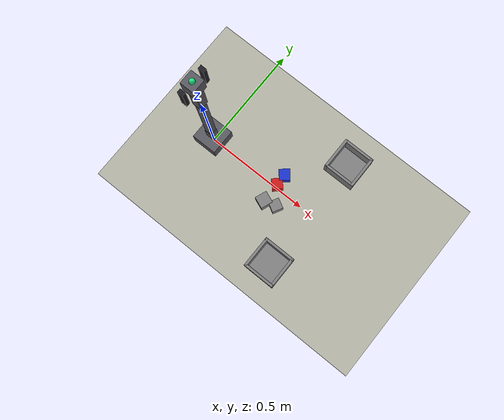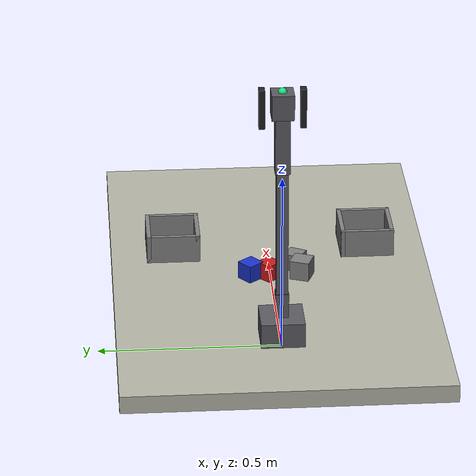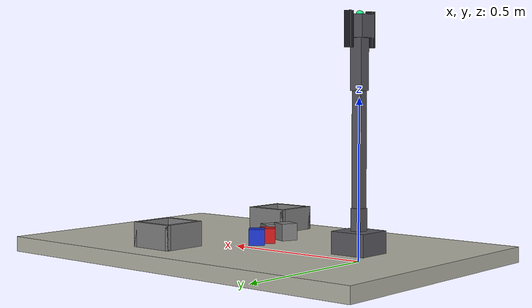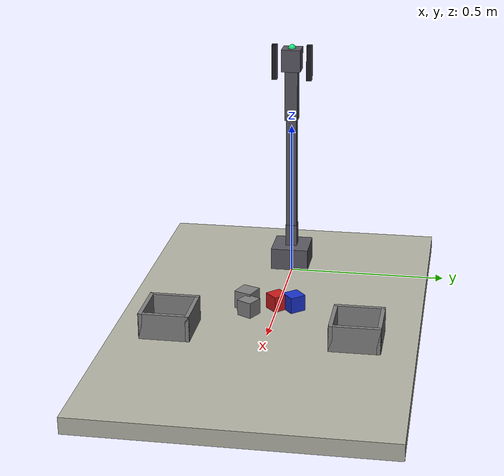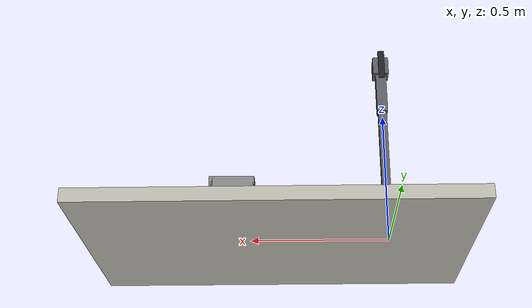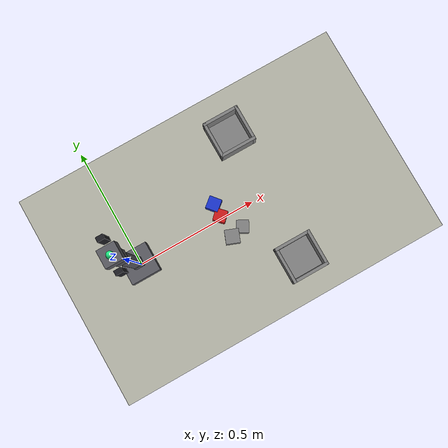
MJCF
<mujoco model="Autonomous reference tabletop arm scene_task_req_a_tabletop_robot_arm_that_sorts_red_and_blue_blo_holdout_000">
  <compiler angle="radian" coordinate="local" />
  <option timestep="0.002" gravity="0 0 -9.81" />
  <!-- scene_set_id=scenes_task_req_a_tabletop_robot_arm_that_sorts_red_and_blue_blo_holdout scene_id=scene_task_req_a_tabletop_robot_arm_that_sorts_red_and_blue_blo_holdout_000 -->
  <default>
    <joint damping="0.8" armature="0.01" />
    <geom friction="1 0.1 0.01" />
  </default>
  <asset>
    <material name="mat_red" rgba="0.8 0.1 0.1 1" />
    <material name="mat_blue" rgba="0.1 0.2 0.8 1" />
    <material name="mat_gray" rgba="0.5 0.5 0.5 1" />
    <material name="mat_link" rgba="0.35 0.35 0.38 1" />
  </asset>
  <worldbody>
    <light name="key" pos="0 0 2" dir="0 0 -1" />
    <geom name="table" type="box" size="0.7 0.45 0.025" pos="0.4 0 0" rgba="0.7 0.7 0.65 1" />
    <body name="base_link" pos="0.0 0.0 0.025">
      <geom name="base_link_geom" type="box" size="0.06 0.06 0.035" pos="0 0 0.035" mass="0.45" material="mat_link" />
      <body name="upper_link" pos="0.0 0.0 0.07">
        <joint name="base_yaw" type="hinge" axis="0.0 0.0 1.0" pos="0 0 0" limited="true" range="-3.14 3.14" />
        <geom name="upper_link_geom" type="box" size="0.018 0.018 0.035" pos="0 0 0.035" mass="0.22" material="mat_link" />
        <body name="forearm_link" pos="0.0 0.0 0.07">
          <joint name="shoulder_pitch" type="hinge" axis="0.0 1.0 0.0" pos="0 0 0" limited="true" range="-1.57 1.57" />
          <geom name="forearm_link_geom" type="box" size="0.016 0.016 0.1785" pos="0 0 0.1785" mass="0.18" material="mat_link" />
          <body name="wrist_link" pos="0.0 0.0 0.357">
            <joint name="elbow_pitch" type="hinge" axis="0.0 1.0 0.0" pos="0 0 0" limited="true" range="-1.57 1.57" />
            <geom name="wrist_link_geom" type="box" size="0.02 0.02 0.08" pos="0 0 0.08" mass="0.035" material="mat_link" />
            <camera name="wrist_rgbd_camera" pos="0.03 0.0 0.04" xyaxes="0 -1 0 0 0 1" mode="fixed" user="0.0 0.0 0.0" />
            <body name="gripper_link" pos="0.0 0.0 0.16">
              <geom name="gripper_link_geom" type="box" size="0.03 0.03 0.035" pos="0 0 0.035" mass="0.04" material="mat_link" />
              <site name="ee_site" pos="0 0 0.07" size="0.012" rgba="0.1 0.9 0.5 1" />
              <site name="grasp_site" pos="0 0 0.015" size="0.01" rgba="1 0.7 0.1 1" />
              <body name="left_gripper_finger" pos="0 0.055 0.07">
                <joint name="left_gripper_slide" type="slide" axis="0 -1 0" limited="true" range="0 0.04" damping="2.0" />
                <geom name="left_gripper_pad" type="box" size="0.012 0.008 0.055" pos="0 0 -0.045" mass="0.025" rgba="0.12 0.12 0.14 1" friction="1.5 0.1 0.01" />
              </body>
              <body name="right_gripper_finger" pos="0 -0.055 0.07">
                <joint name="right_gripper_slide" type="slide" axis="0 1 0" limited="true" range="0 0.04" damping="2.0" />
                <geom name="right_gripper_pad" type="box" size="0.012 0.008 0.055" pos="0 0 -0.045" mass="0.025" rgba="0.12 0.12 0.14 1" friction="1.5 0.1 0.01" />
              </body>
            </body>
          </body>
        </body>
      </body>
    </body>
    <body name="obj_red_block" pos="0.36 0.0083 0.0504" euler="0 0 -0.802">
      <freejoint name="free_red_block" />
      <geom name="red_block" type="box" size="0.0244 0.0244 0.0244" mass="0.0518" friction="1.254 0.1 0.01" material="mat_red" />
    </body>
    <body name="obj_blue_block" pos="0.36 0.0601 0.0511" euler="0 0 -2.4528">
      <freejoint name="free_blue_block" />
      <geom name="blue_block" type="box" size="0.0251 0.0251 0.0251" mass="0.0615" friction="0.851 0.1 0.01" material="mat_blue" />
    </body>
    <geom name="red_bin" type="box" size="0.07 0.07 0.004" pos="0.55 -0.283 0.029" material="mat_gray" />
    <geom name="red_bin_wall_px" type="box" size="0.006 0.07600000000000001 0.04" pos="0.62 -0.283 0.065" material="mat_gray" />
    <geom name="red_bin_wall_nx" type="box" size="0.006 0.07600000000000001 0.04" pos="0.48 -0.283 0.065" material="mat_gray" />
    <geom name="red_bin_wall_py" type="box" size="0.07600000000000001 0.006 0.04" pos="0.55 -0.213 0.065" material="mat_gray" />
    <geom name="red_bin_wall_ny" type="box" size="0.07600000000000001 0.006 0.04" pos="0.55 -0.353 0.065" material="mat_gray" />
    <geom name="blue_bin" type="box" size="0.07 0.07 0.004" pos="0.55 0.2726 0.029" material="mat_gray" />
    <geom name="blue_bin_wall_px" type="box" size="0.006 0.07600000000000001 0.04" pos="0.62 0.2726 0.065" material="mat_gray" />
    <geom name="blue_bin_wall_nx" type="box" size="0.006 0.07600000000000001 0.04" pos="0.48 0.2726 0.065" material="mat_gray" />
    <geom name="blue_bin_wall_py" type="box" size="0.07600000000000001 0.006 0.04" pos="0.55 0.3426 0.065" material="mat_gray" />
    <geom name="blue_bin_wall_ny" type="box" size="0.07600000000000001 0.006 0.04" pos="0.55 0.2026 0.065" material="mat_gray" />
    <body name="obj_distractor_0_0" pos="0.4141 -0.0704 0.0506" euler="0 0 -0.4959">
      <freejoint name="free_distractor_0_0" />
      <geom name="distractor_0_0" type="box" size="0.0246 0.0246 0.0246" mass="0.0544" friction="0.897 0.1 0.01" material="mat_gray" />
    </body>
    <body name="obj_distractor_0_1" pos="0.36 -0.085 0.0539" euler="0 0 2.7744">
      <freejoint name="free_distractor_0_1" />
      <geom name="distractor_0_1" type="box" size="0.0279 0.0279 0.0279" mass="0.0465" friction="0.819 0.1 0.01" material="mat_gray" />
    </body>
  </worldbody>
  <actuator>
    <motor name="base_yaw_motor" joint="base_yaw" gear="1" forcerange="-12.0 12.0" />
    <motor name="shoulder_pitch_motor" joint="shoulder_pitch" gear="1" forcerange="-12.0 12.0" />
    <motor name="elbow_pitch_motor" joint="elbow_pitch" gear="1" forcerange="-12.0 12.0" />
    <motor name="left_gripper_slide_motor" joint="left_gripper_slide" gear="1" forcerange="-25 25" />
    <motor name="right_gripper_slide_motor" joint="right_gripper_slide" gear="1" forcerange="-25 25" />
  </actuator>
  <sensor>
    <framepos name="wrist_rgbd_camera_pose" objtype="camera" objname="wrist_rgbd_camera" />
    <framequat name="wrist_rgbd_camera_orientation" objtype="camera" objname="wrist_rgbd_camera" />
  </sensor>
</mujoco>
